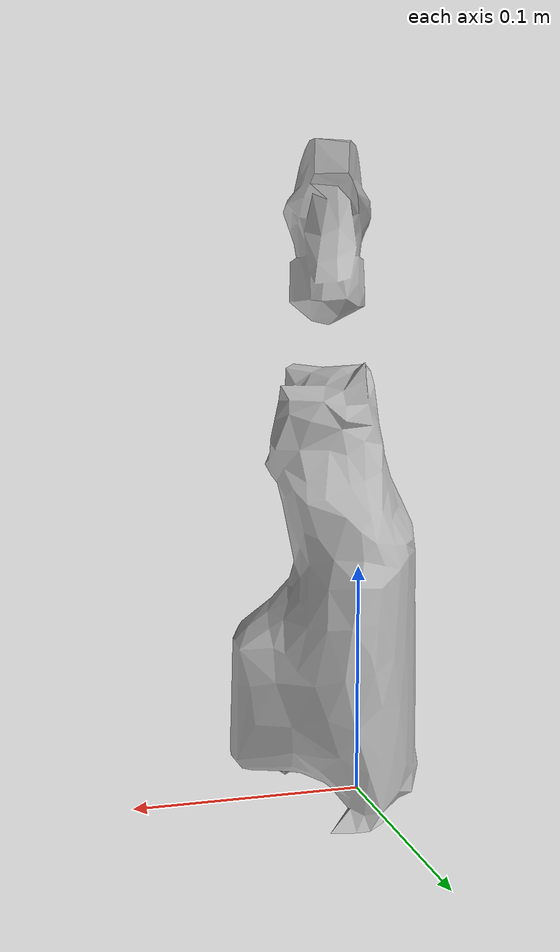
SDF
<?xml version="1.0" ?>
<sdf version='1.8'>
  <model name='ycb_002_master_chef_can'>
    <link name='body'>
      <inertial>
        <mass>0.414</mass>
        <pose>-0.0170707295146 -0.00976285584694 0.0705842198739 0 0 0</pose>
        <inertia>
          <ixx>0.000889575538371</ixx>
          <ixy>3.88357680854e-07</ixy>
          <ixz>-5.51685049938e-07</ixz>
          <iyy>0.000887763115987</iyy>
          <iyz>1.89411095625e-07</iyz>
          <izz>0.000518515580785</izz>
        </inertia>
      </inertial>
      <visual name='ycb_002_master_chef_can_visual'>
        <pose>0 0 0 0 0 0</pose>
        <geometry>
          <mesh>
            <uri>model://ycb_002_master_chef_can/meshes/textured.dae</uri>
          </mesh>
        </geometry>
      </visual>
      <collision name='ycb_002_master_chef_can_collision'>
        <pose>0 0 0 0 0 0</pose>
        <geometry>
          <mesh>
            <uri>model://ycb_002_master_chef_can/meshes/nontextured.stl</uri>
          </mesh>
        </geometry>
        <max_contacts>10</max_contacts>
        <surface>
          <contact>
            <ode>
              <kp>1e15</kp>
              <kd>1e13</kd>
            </ode>
          </contact>
        </surface>
      </collision>
    </link>
  </model>
</sdf>
